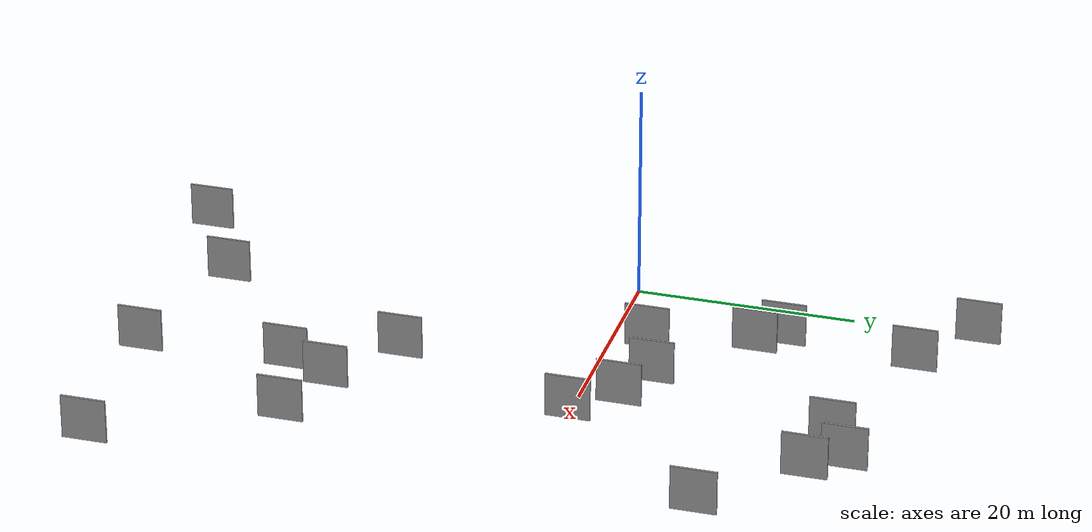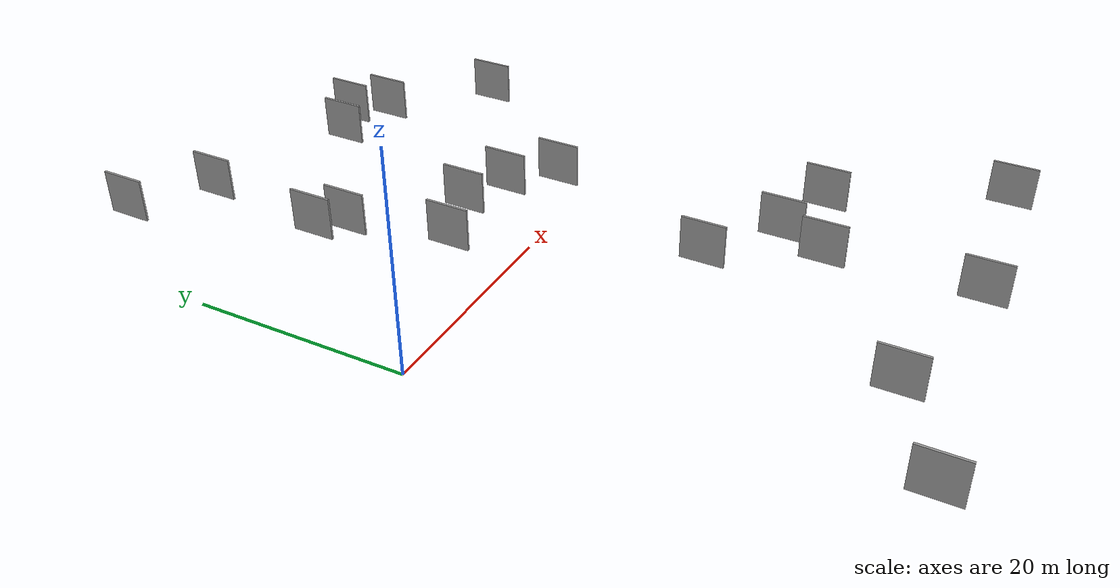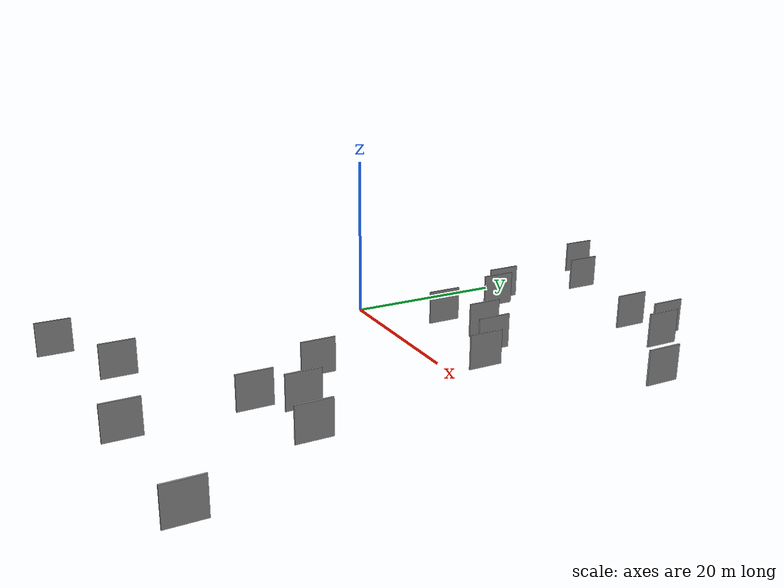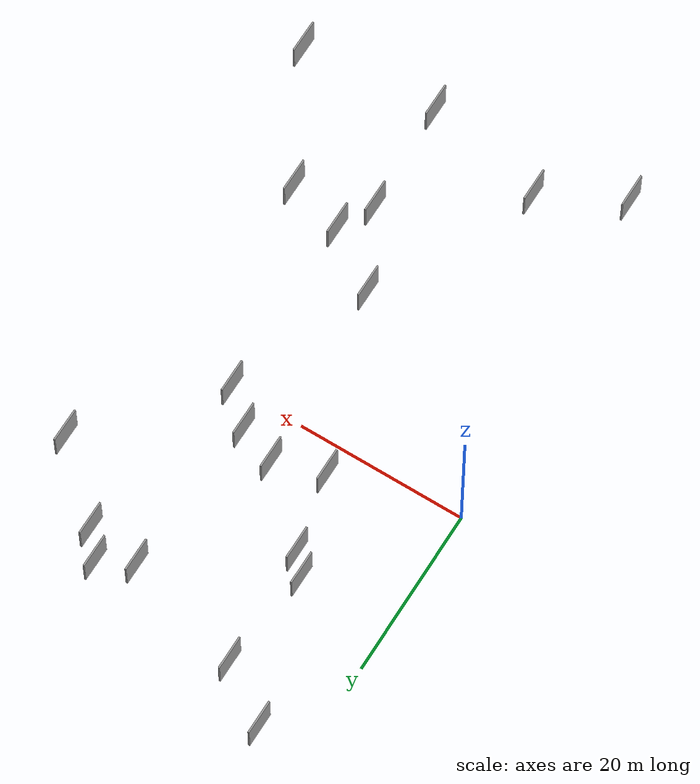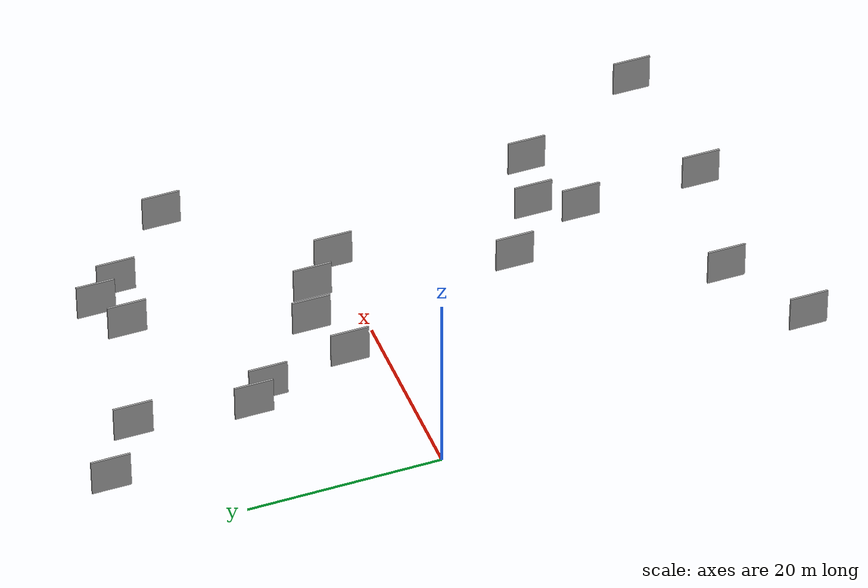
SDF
<sdf version="1.6">
 <world name="default">
  <scene>
   <sky><clouds><speed>12</speed></clouds></sky>
   <ambient>0.4 0.4 0.4 1</ambient>
   <background>0.7 0.7 0.7 1</background>
   <shadows>1</shadows>
  </scene>
  <gravity>0 0 -9.8066</gravity>
  <magnetic_field>6e-06 2.3e-05 -4.2e-05</magnetic_field>
  <physics default="0" name="default_physics" type="ode">
   <ode>
    <solver>
     <type>quick</type>
     <iters>10</iters>
     <sor>1.0</sor>
     <use_dynamic_moi_rescaling>0</use_dynamic_moi_rescaling>
    </solver>
    <constraints>
     <cfm>0</cfm>
     <erp>0.2</erp>
     <contact_max_correcting_vel>100</contact_max_correcting_vel>
     <contact_surface_layer>0.001</contact_surface_layer>
    </constraints>
   </ode>
   <max_step_size>0.004</max_step_size>
   <real_time_factor>1</real_time_factor>
   <real_time_update_rate>250</real_time_update_rate>
  </physics>
  <light name="sun" type="directional">
   <pose>0 0 10 0 0 0</pose>
   <diffuse>0.8 0.8 0.8 1</diffuse>
   <specular>0.2 0.2 0.2 1</specular>
   <attenuation>
    <range>1000</range>
    <constant>0.9</constant>
    <linear>0.01</linear>
    <quadratic>0.001</quadratic>
   </attenuation>
   <direction>-0.5 0.1 -0.9</direction>
  </light>
  <model name="grey_wall_1">
   <static>1</static>
   <pose>11.3279 27.7299 2.5 0.000000 0.000000 1.570796</pose>
   <link name="link">
    <pose>0 0 2.00 0 0 0</pose>
    <collision name="collision"><geometry><box><size>4.00 0.2 4.00</size></box></geometry></collision>
    <visual name="visual">
     <cast_shadows>0</cast_shadows>
     <geometry><box><size>4.00 0.2 4.00</size></box></geometry>
     <material>
      <script>
       <uri>model://grey_wall/materials/scripts</uri>
       <uri>model://grey_wall/materials/textures</uri>
       <name>vrc/grey_wall</name>
      </script>
     </material>
    </visual>
   </link>
  </model>
  <model name="grey_wall_2">
   <static>1</static>
   <pose>11.9432 13.6432 2.5 0.000000 0.000000 1.570796</pose>
   <link name="link">
    <pose>0 0 2.00 0 0 0</pose>
    <collision name="collision"><geometry><box><size>4.00 0.2 4.00</size></box></geometry></collision>
    <visual name="visual">
     <cast_shadows>0</cast_shadows>
     <geometry><box><size>4.00 0.2 4.00</size></box></geometry>
     <material>
      <script>
       <uri>model://grey_wall/materials/scripts</uri>
       <uri>model://grey_wall/materials/textures</uri>
       <name>vrc/grey_wall</name>
      </script>
     </material>
    </visual>
   </link>
  </model>
  <model name="grey_wall_3">
   <static>1</static>
   <pose>12.3072 -34.8202 2.5 0.000000 0.000000 1.570796</pose>
   <link name="link">
    <pose>0 0 2.00 0 0 0</pose>
    <collision name="collision"><geometry><box><size>4.00 0.2 4.00</size></box></geometry></collision>
    <visual name="visual">
     <cast_shadows>0</cast_shadows>
     <geometry><box><size>4.00 0.2 4.00</size></box></geometry>
     <material>
      <script>
       <uri>model://grey_wall/materials/scripts</uri>
       <uri>model://grey_wall/materials/textures</uri>
       <name>vrc/grey_wall</name>
      </script>
     </material>
    </visual>
   </link>
  </model>
  <model name="grey_wall_4">
   <static>1</static>
   <pose>21.4524 -15.7537 2.5 0.000000 0.000000 1.570796</pose>
   <link name="link">
    <pose>0 0 2.00 0 0 0</pose>
    <collision name="collision"><geometry><box><size>4.00 0.2 4.00</size></box></geometry></collision>
    <visual name="visual">
     <cast_shadows>0</cast_shadows>
     <geometry><box><size>4.00 0.2 4.00</size></box></geometry>
     <material>
      <script>
       <uri>model://grey_wall/materials/scripts</uri>
       <uri>model://grey_wall/materials/textures</uri>
       <name>vrc/grey_wall</name>
      </script>
     </material>
    </visual>
   </link>
  </model>
  <model name="grey_wall_5">
   <static>1</static>
   <pose>28.1793 -20.3372 2.5 0.000000 0.000000 1.570796</pose>
   <link name="link">
    <pose>0 0 2.00 0 0 0</pose>
    <collision name="collision"><geometry><box><size>4.00 0.2 4.00</size></box></geometry></collision>
    <visual name="visual">
     <cast_shadows>0</cast_shadows>
     <geometry><box><size>4.00 0.2 4.00</size></box></geometry>
     <material>
      <script>
       <uri>model://grey_wall/materials/scripts</uri>
       <uri>model://grey_wall/materials/textures</uri>
       <name>vrc/grey_wall</name>
      </script>
     </material>
    </visual>
   </link>
  </model>
  <model name="grey_wall_6">
   <static>1</static>
   <pose>34.8223 -22.1584 2.5 0.000000 0.000000 1.570796</pose>
   <link name="link">
    <pose>0 0 2.00 0 0 0</pose>
    <collision name="collision"><geometry><box><size>4.00 0.2 4.00</size></box></geometry></collision>
    <visual name="visual">
     <cast_shadows>0</cast_shadows>
     <geometry><box><size>4.00 0.2 4.00</size></box></geometry>
     <material>
      <script>
       <uri>model://grey_wall/materials/scripts</uri>
       <uri>model://grey_wall/materials/textures</uri>
       <name>vrc/grey_wall</name>
      </script>
     </material>
    </visual>
   </link>
  </model>
  <model name="grey_wall_7">
   <static>1</static>
   <pose>3.0180 -39.7658 2.5 0.000000 0.000000 1.570796</pose>
   <link name="link">
    <pose>0 0 2.00 0 0 0</pose>
    <collision name="collision"><geometry><box><size>4.00 0.2 4.00</size></box></geometry></collision>
    <visual name="visual">
     <cast_shadows>0</cast_shadows>
     <geometry><box><size>4.00 0.2 4.00</size></box></geometry>
     <material>
      <script>
       <uri>model://grey_wall/materials/scripts</uri>
       <uri>model://grey_wall/materials/textures</uri>
       <name>vrc/grey_wall</name>
      </script>
     </material>
    </visual>
   </link>
  </model>
  <model name="grey_wall_8">
   <static>1</static>
   <pose>42.8050 -36.8246 2.5 0.000000 0.000000 1.570796</pose>
   <link name="link">
    <pose>0 0 2.00 0 0 0</pose>
    <collision name="collision"><geometry><box><size>4.00 0.2 4.00</size></box></geometry></collision>
    <visual name="visual">
     <cast_shadows>0</cast_shadows>
     <geometry><box><size>4.00 0.2 4.00</size></box></geometry>
     <material>
      <script>
       <uri>model://grey_wall/materials/scripts</uri>
       <uri>model://grey_wall/materials/textures</uri>
       <name>vrc/grey_wall</name>
      </script>
     </material>
    </visual>
   </link>
  </model>
  <model name="grey_wall_9">
   <static>1</static>
   <pose>26.0942 -24.6708 2.5 0.000000 0.000000 1.570796</pose>
   <link name="link">
    <pose>0 0 2.00 0 0 0</pose>
    <collision name="collision"><geometry><box><size>4.00 0.2 4.00</size></box></geometry></collision>
    <visual name="visual">
     <cast_shadows>0</cast_shadows>
     <geometry><box><size>4.00 0.2 4.00</size></box></geometry>
     <material>
      <script>
       <uri>model://grey_wall/materials/scripts</uri>
       <uri>model://grey_wall/materials/textures</uri>
       <name>vrc/grey_wall</name>
      </script>
     </material>
    </visual>
   </link>
  </model>
  <model name="grey_wall_10">
   <static>1</static>
   <pose>10.0370 15.7796 2.5 0.000000 0.000000 1.570796</pose>
   <link name="link">
    <pose>0 0 2.00 0 0 0</pose>
    <collision name="collision"><geometry><box><size>4.00 0.2 4.00</size></box></geometry></collision>
    <visual name="visual">
     <cast_shadows>0</cast_shadows>
     <geometry><box><size>4.00 0.2 4.00</size></box></geometry>
     <material>
      <script>
       <uri>model://grey_wall/materials/scripts</uri>
       <uri>model://grey_wall/materials/textures</uri>
       <name>vrc/grey_wall</name>
      </script>
     </material>
    </visual>
   </link>
  </model>
  <model name="grey_wall_11">
   <static>1</static>
   <pose>31.7550 22.7515 2.5 0.000000 0.000000 1.570796</pose>
   <link name="link">
    <pose>0 0 2.00 0 0 0</pose>
    <collision name="collision"><geometry><box><size>4.00 0.2 4.00</size></box></geometry></collision>
    <visual name="visual">
     <cast_shadows>0</cast_shadows>
     <geometry><box><size>4.00 0.2 4.00</size></box></geometry>
     <material>
      <script>
       <uri>model://grey_wall/materials/scripts</uri>
       <uri>model://grey_wall/materials/textures</uri>
       <name>vrc/grey_wall</name>
      </script>
     </material>
    </visual>
   </link>
  </model>
  <model name="grey_wall_12">
   <static>1</static>
   <pose>25.4483 23.6655 2.5 0.000000 0.000000 1.570796</pose>
   <link name="link">
    <pose>0 0 2.00 0 0 0</pose>
    <collision name="collision"><geometry><box><size>4.00 0.2 4.00</size></box></geometry></collision>
    <visual name="visual">
     <cast_shadows>0</cast_shadows>
     <geometry><box><size>4.00 0.2 4.00</size></box></geometry>
     <material>
      <script>
       <uri>model://grey_wall/materials/scripts</uri>
       <uri>model://grey_wall/materials/textures</uri>
       <name>vrc/grey_wall</name>
      </script>
     </material>
    </visual>
   </link>
  </model>
  <model name="grey_wall_13">
   <static>1</static>
   <pose>27.8572 1.2253 2.5 0.000000 0.000000 1.570796</pose>
   <link name="link">
    <pose>0 0 2.00 0 0 0</pose>
    <collision name="collision"><geometry><box><size>4.00 0.2 4.00</size></box></geometry></collision>
    <visual name="visual">
     <cast_shadows>0</cast_shadows>
     <geometry><box><size>4.00 0.2 4.00</size></box></geometry>
     <material>
      <script>
       <uri>model://grey_wall/materials/scripts</uri>
       <uri>model://grey_wall/materials/textures</uri>
       <name>vrc/grey_wall</name>
      </script>
     </material>
    </visual>
   </link>
  </model>
  <model name="grey_wall_14">
   <static>1</static>
   <pose>19.7218 6.4146 2.5 0.000000 0.000000 1.570796</pose>
   <link name="link">
    <pose>0 0 2.00 0 0 0</pose>
    <collision name="collision"><geometry><box><size>4.00 0.2 4.00</size></box></geometry></collision>
    <visual name="visual">
     <cast_shadows>0</cast_shadows>
     <geometry><box><size>4.00 0.2 4.00</size></box></geometry>
     <material>
      <script>
       <uri>model://grey_wall/materials/scripts</uri>
       <uri>model://grey_wall/materials/textures</uri>
       <name>vrc/grey_wall</name>
      </script>
     </material>
    </visual>
   </link>
  </model>
  <model name="grey_wall_15">
   <static>1</static>
   <pose>24.1960 4.7145 2.5 0.000000 0.000000 1.570796</pose>
   <link name="link">
    <pose>0 0 2.00 0 0 0</pose>
    <collision name="collision"><geometry><box><size>4.00 0.2 4.00</size></box></geometry></collision>
    <visual name="visual">
     <cast_shadows>0</cast_shadows>
     <geometry><box><size>4.00 0.2 4.00</size></box></geometry>
     <material>
      <script>
       <uri>model://grey_wall/materials/scripts</uri>
       <uri>model://grey_wall/materials/textures</uri>
       <name>vrc/grey_wall</name>
      </script>
     </material>
    </visual>
   </link>
  </model>
  <model name="grey_wall_16">
   <static>1</static>
   <pose>39.7484 15.3168 2.5 0.000000 0.000000 1.570796</pose>
   <link name="link">
    <pose>0 0 2.00 0 0 0</pose>
    <collision name="collision"><geometry><box><size>4.00 0.2 4.00</size></box></geometry></collision>
    <visual name="visual">
     <cast_shadows>0</cast_shadows>
     <geometry><box><size>4.00 0.2 4.00</size></box></geometry>
     <material>
      <script>
       <uri>model://grey_wall/materials/scripts</uri>
       <uri>model://grey_wall/materials/textures</uri>
       <name>vrc/grey_wall</name>
      </script>
     </material>
    </visual>
   </link>
  </model>
  <model name="grey_wall_17">
   <static>1</static>
   <pose>4.9492 32.0848 2.5 0.000000 0.000000 1.570796</pose>
   <link name="link">
    <pose>0 0 2.00 0 0 0</pose>
    <collision name="collision"><geometry><box><size>4.00 0.2 4.00</size></box></geometry></collision>
    <visual name="visual">
     <cast_shadows>0</cast_shadows>
     <geometry><box><size>4.00 0.2 4.00</size></box></geometry>
     <material>
      <script>
       <uri>model://grey_wall/materials/scripts</uri>
       <uri>model://grey_wall/materials/textures</uri>
       <name>vrc/grey_wall</name>
      </script>
     </material>
    </visual>
   </link>
  </model>
  <model name="grey_wall_18">
   <static>1</static>
   <pose>13.9330 4.4557 2.5 0.000000 0.000000 1.570796</pose>
   <link name="link">
    <pose>0 0 2.00 0 0 0</pose>
    <collision name="collision"><geometry><box><size>4.00 0.2 4.00</size></box></geometry></collision>
    <visual name="visual">
     <cast_shadows>0</cast_shadows>
     <geometry><box><size>4.00 0.2 4.00</size></box></geometry>
     <material>
      <script>
       <uri>model://grey_wall/materials/scripts</uri>
       <uri>model://grey_wall/materials/textures</uri>
       <name>vrc/grey_wall</name>
      </script>
     </material>
    </visual>
   </link>
  </model>
  <model name="grey_wall_19">
   <static>1</static>
   <pose>29.3693 25.6137 2.5 0.000000 0.000000 1.570796</pose>
   <link name="link">
    <pose>0 0 2.00 0 0 0</pose>
    <collision name="collision"><geometry><box><size>4.00 0.2 4.00</size></box></geometry></collision>
    <visual name="visual">
     <cast_shadows>0</cast_shadows>
     <geometry><box><size>4.00 0.2 4.00</size></box></geometry>
     <material>
      <script>
       <uri>model://grey_wall/materials/scripts</uri>
       <uri>model://grey_wall/materials/textures</uri>
       <name>vrc/grey_wall</name>
      </script>
     </material>
    </visual>
   </link>
  </model>
  <model name="grey_wall_20">
   <static>1</static>
   <pose>26.5864 -37.8983 2.5 0.000000 0.000000 1.570796</pose>
   <link name="link">
    <pose>0 0 2.00 0 0 0</pose>
    <collision name="collision"><geometry><box><size>4.00 0.2 4.00</size></box></geometry></collision>
    <visual name="visual">
     <cast_shadows>0</cast_shadows>
     <geometry><box><size>4.00 0.2 4.00</size></box></geometry>
     <material>
      <script>
       <uri>model://grey_wall/materials/scripts</uri>
       <uri>model://grey_wall/materials/textures</uri>
       <name>vrc/grey_wall</name>
      </script>
     </material>
    </visual>
   </link>
  </model>
 </world>
</sdf>
